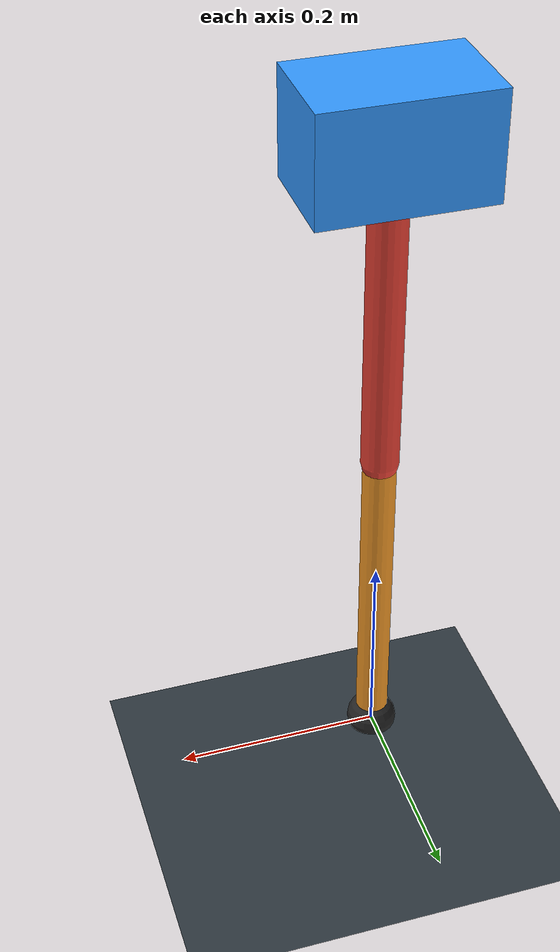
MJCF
<mujoco model="single_axis_two_bar">
  <compiler angle="radian" inertiafromgeom="true"/>
  <option timestep="0.001" integrator="implicitfast" gravity="0 0 -9.81"/>
  <default>
    <joint damping="0.08"/>
    <geom friction="1.2 0.01 0.0001" condim="3"/>
  </default>
  <worldbody>
    <geom name="floor" type="plane" size="5 5 0.1" rgba="0.18 0.22 0.25 1"/>
    <body name="carriage" pos="0 0 0.6604245548604327">
      <joint name="pole_slide" type="slide" axis="0 0 1"/>
      <geom name="payload" type="box" size="0.08 0.05 0.05" mass="2.5432012801382067" rgba="0.2 0.6 1 1"/>
      <body name="thigh" pos="0 0 0">
        <joint name="hip" type="hinge" axis="0 1 0"/>
        <geom name="thigh_link" type="capsule" fromto="0 0 0 0 0 -0.3278322969541988" size="0.018" mass="0.23358484350147254" rgba="0.9 0.25 0.2 1"/>
        <body name="shank" pos="0 0 -0.3278322969541988">
          <joint name="knee" type="hinge" axis="0 1 0"/>
          <geom name="shank_link" type="capsule" fromto="0 0 0 0 0 -0.32724456372665967" size="0.016" mass="0.23316607581064147" rgba="0.95 0.6 0.15 1"/>
          <geom name="foot" type="sphere" pos="0 0 -0.32724456372665967" size="0.025" mass="0.03" rgba="0.15 0.15 0.15 1"/>
          <site name="toe" pos="0 0 -0.32724456372665967" size="0.008"/>
        </body>
      </body>
    </body>
  </worldbody>
  <actuator>
    <motor name="hip_motor" joint="hip" ctrlrange="-30.097793000643385 30.097793000643385"/>
    <motor name="knee_motor" joint="knee" ctrlrange="-78.93400255561998 78.93400255561998"/>
  </actuator>
</mujoco>
